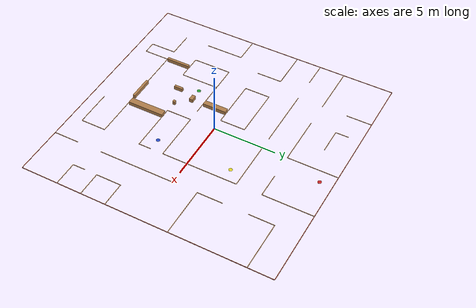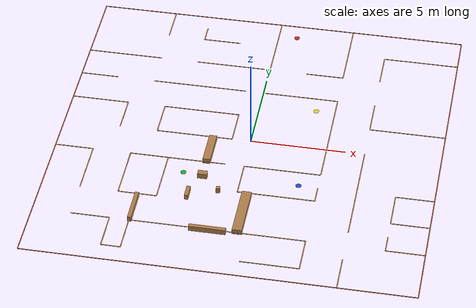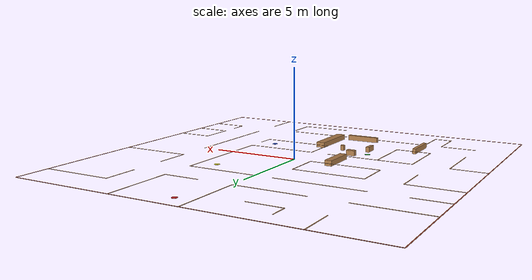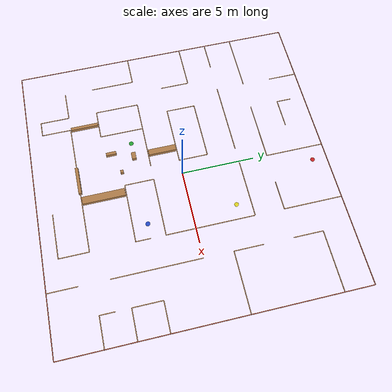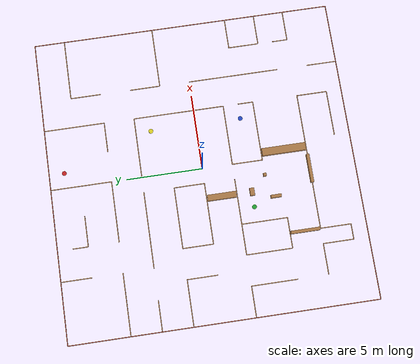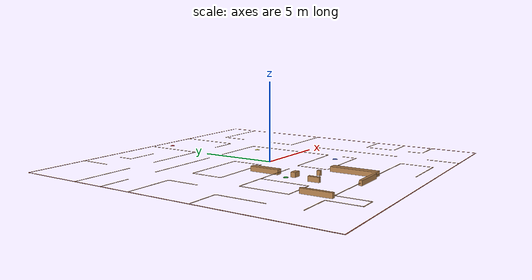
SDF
<sdf version='1.5'>
    <!-- Draw Circle -->
    <model name='ros_symbol'>
      <static>1</static>
      <link name='symbol'>

	<!-- OUTSIDE WALLS-->
        <collision name='OuterWall_0_Collision'>
            <pose>0.0 -10.0 0 0 -0 0</pose>
          <geometry>
            <box>
              <size>20.0 0.05 2.5</size>
            </box>
          </geometry>
          <max_contacts>10</max_contacts>
        <surface>
            <contact>
              <ode/>
            </contact>
            <bounce/>
            <friction>
              <torsional>
                <ode/>
              </torsional>
              <ode/>
            </friction>
          </surface>
        </collision>
        <visual name='OuterWall_0_Visual'>
            <pose frame=''>0.0 -10.0 0 0 -0 0</pose>
          <geometry>
            <box>
              <size>20.0 0.05 0.01</size>
            </box>
          </geometry>
          <material>
            <script>
              <name>Gazebo/Bricks</name>
              <uri>file://media/materials/scripts/gazebo.material</uri>
            </script>
          </material>
        </visual>

        <collision name='OuterWall_1_Collision'>
            <pose>0.0 10.0 0 0 -0 0</pose>
          <geometry>
            <box>
              <size>20.0 0.05 2.5</size>
            </box>
          </geometry>
          <max_contacts>10</max_contacts>
        <surface>
            <contact>
              <ode/>
            </contact>
            <bounce/>
            <friction>
              <torsional>
                <ode/>
              </torsional>
              <ode/>
            </friction>
          </surface>
        </collision>
        <visual name='OuterWall_1_Visual'>
            <pose frame=''>0.0 10.0 0 0 -0 0</pose>
          <geometry>
            <box>
              <size>20.0 0.05 0.01</size>
            </box>
          </geometry>
          <material>
            <script>
              <name>Gazebo/Bricks</name>
              <uri>file://media/materials/scripts/gazebo.material</uri>
            </script>
          </material>
        </visual>

        <collision name='OuterWall_2_Collision'>
            <pose>10.0 0.0 0 0 -0 -1.57079632679</pose>
          <geometry>
            <box>
              <size>20.0 0.05 2.5</size>
            </box>
          </geometry>
          <max_contacts>10</max_contacts>
        <surface>
            <contact>
              <ode/>
            </contact>
            <bounce/>
            <friction>
              <torsional>
                <ode/>
              </torsional>
              <ode/>
            </friction>
          </surface>
        </collision>
        <visual name='OuterWall_2_Visual'>
            <pose frame=''>10.0 0.0 0 0 -0 -1.57079632679</pose>
          <geometry>
            <box>
              <size>20.0 0.05 0.01</size>
            </box>
          </geometry>
          <material>
            <script>
              <name>Gazebo/Bricks</name>
              <uri>file://media/materials/scripts/gazebo.material</uri>
            </script>
          </material>
        </visual>

        <collision name='OuterWall_3_Collision'>
            <pose>-10.0 0.0 0 0 -0 -1.57079632679</pose>
          <geometry>
            <box>
              <size>20.0 0.05 0.01</size>
            </box>
          </geometry>
          <max_contacts>10</max_contacts>
        <surface>
            <contact>
              <ode/>
            </contact>
            <bounce/>
            <friction>
              <torsional>
                <ode/>
              </torsional>
              <ode/>
            </friction>
          </surface>
        </collision>
        <visual name='OuterWall_3_Visual'>
            <pose frame=''>-10.0 0.0 0 0 -0 -1.57079632679</pose>
          <geometry>
            <box>
              <size>20.0 0.05 0.01</size>
            </box>
          </geometry>
          <material>
            <script>
              <name>Gazebo/Bricks</name>
              <uri>file://media/materials/scripts/gazebo.material</uri>
            </script>
          </material>
        </visual>

        <collision name='Wall_1_Collision'>
            <pose>8.0 8.0 0 0 -0 -0</pose>
          <geometry>
            <box>
              <size>4.0 0.05 2.5</size>
            </box>
          </geometry>
          <max_contacts>10</max_contacts>
        <surface>
            <contact>
              <ode/>
            </contact>
            <bounce/>
            <friction>
              <torsional>
                <ode/>
              </torsional>
              <ode/>
            </friction>
          </surface>
        </collision>
        <visual name='Wall_1_Visual'>
            <pose>8.0 8.0 0 0 -0 -0</pose>
          <geometry>
            <box>
              <size>4.0 0.05 0.01</size>
            </box>
          </geometry>
          <material>
            <script>
              <name>Gazebo/Wood</name>
              <uri>file://media/materials/scripts/gazebo.material</uri>
            </script>
          </material>
        </visual>

        <collision name='Wall_2_Collision'>
            <pose>6.0 7.0 0 0 -0 -1.5707</pose>
          <geometry>
            <box>
              <size>2.0 0.05 2.5</size>
            </box>
          </geometry>
          <max_contacts>10</max_contacts>
        <surface>
            <contact>
              <ode/>
            </contact>
            <bounce/>
            <friction>
              <torsional>
                <ode/>
              </torsional>
              <ode/>
            </friction>
          </surface>
        </collision>
        <visual name='Wall_2_Visual'>
            <pose>6.0 7.0 0 0 -0 -1.5707</pose>
          <geometry>
            <box>
              <size>2.0 0.05 0.01</size>
            </box>
          </geometry>
          <material>
            <script>
              <name>Gazebo/Wood</name>
              <uri>file://media/materials/scripts/gazebo.material</uri>
            </script>
          </material>
        </visual>

        <collision name='Wall_3_Collision'>
            <pose>6.0 3.0 0 0 -0 -1.5707</pose>
          <geometry>
            <box>
              <size>2.0 0.05 2.5</size>
            </box>
          </geometry>
          <max_contacts>10</max_contacts>
        <surface>
            <contact>
              <ode/>
            </contact>
            <bounce/>
            <friction>
              <torsional>
                <ode/>
              </torsional>
              <ode/>
            </friction>
          </surface>
        </collision>
        <visual name='Wall_3_Visual'>
            <pose>6.0 3.0 0 0 -0 -1.5707</pose>
          <geometry>
            <box>
              <size>2.0 0.05 0.01</size>
            </box>
          </geometry>
          <material>
            <script>
              <name>Gazebo/Wood</name>
              <uri>file://media/materials/scripts/gazebo.material</uri>
            </script>
          </material>
        </visual>

        <collision name='Wall_4_Collision'>
            <pose>8.0 2.0 0 0 -0 -0</pose>
          <geometry>
            <box>
              <size>4.0 0.05 2.5</size>
            </box>
          </geometry>
          <max_contacts>10</max_contacts>
        <surface>
            <contact>
              <ode/>
            </contact>
            <bounce/>
            <friction>
              <torsional>
                <ode/>
              </torsional>
              <ode/>
            </friction>
          </surface>
        </collision>
        <visual name='Wall_4_Visual'>
            <pose>8.0 2.0 0 0 -0 -0</pose>
          <geometry>
            <box>
              <size>4.0 0.05 0.01</size>
            </box>
          </geometry>
          <material>
            <script>
              <name>Gazebo/Wood</name>
              <uri>file://media/materials/scripts/gazebo.material</uri>
            </script>
          </material>
        </visual>

        <collision name='Wall_5_Collision'>
            <pose>6.0 -3.0 0 0 -0 -1.5707</pose>
          <geometry>
            <box>
              <size>6.0 0.05 2.5</size>
            </box>
          </geometry>
          <max_contacts>10</max_contacts>
        <surface>
            <contact>
              <ode/>
            </contact>
            <bounce/>
            <friction>
              <torsional>
                <ode/>
              </torsional>
              <ode/>
            </friction>
          </surface>
        </collision>
        <visual name='Wall_5_Visual'>
            <pose>6.0 -3.0 0 0 -0 -1.5707</pose>
          <geometry>
            <box>
              <size>6.0 0.05 0.01</size>
            </box>
          </geometry>
          <material>
            <script>
              <name>Gazebo/Wood</name>
              <uri>file://media/materials/scripts/gazebo.material</uri>
            </script>
          </material>
        </visual>

        <collision name='Wall_6_Collision'>
            <pose>9.0 -3.0 0 0 -0 -0</pose>
          <geometry>
            <box>
              <size>2.0 0.05 2.5</size>
            </box>
          </geometry>
          <max_contacts>10</max_contacts>
        <surface>
            <contact>
              <ode/>
            </contact>
            <bounce/>
            <friction>
              <torsional>
                <ode/>
              </torsional>
              <ode/>
            </friction>
          </surface>
        </collision>
        <visual name='Wall_6_Visual'>
            <pose>9.0 -3.0 0 0 -0 -0</pose>
          <geometry>
            <box>
              <size>2.0 0.05 0.01</size>
            </box>
          </geometry>
          <material>
            <script>
              <name>Gazebo/Wood</name>
              <uri>file://media/materials/scripts/gazebo.material</uri>
            </script>
          </material>
        </visual>

        <collision name='Wall_7_Collision'>
            <pose>8.0 -4.0 0 0 -0 -1.5707</pose>
          <geometry>
            <box>
              <size>2.0 0.05 2.5</size>
            </box>
          </geometry>
          <max_contacts>10</max_contacts>
        <surface>
            <contact>
              <ode/>
            </contact>
            <bounce/>
            <friction>
              <torsional>
                <ode/>
              </torsional>
              <ode/>
            </friction>
          </surface>
        </collision>
        <visual name='Wall_7_Visual'>
            <pose>8.0 -4.0 0 0 -0 -1.5707</pose>
          <geometry>
            <box>
              <size>2.0 0.05 0.01</size>
            </box>
          </geometry>
          <material>
            <script>
              <name>Gazebo/Wood</name>
              <uri>file://media/materials/scripts/gazebo.material</uri>
            </script>
          </material>
        </visual>

        <collision name='Wall_8_Collision'>
            <pose>9.0 -5.0 0 0 -0 -0</pose>
          <geometry>
            <box>
              <size>2.0 0.05 2.5</size>
            </box>
          </geometry>
          <max_contacts>10</max_contacts>
        <surface>
            <contact>
              <ode/>
            </contact>
            <bounce/>
            <friction>
              <torsional>
                <ode/>
              </torsional>
              <ode/>
            </friction>
          </surface>
        </collision>
        <visual name='Wall_8_Visual'>
            <pose>9.0 -5.0 0 0 -0 -0</pose>
          <geometry>
            <box>
              <size>2.0 0.05 0.01</size>
            </box>
          </geometry>
          <material>
            <script>
              <name>Gazebo/Wood</name>
              <uri>file://media/materials/scripts/gazebo.material</uri>
            </script>
          </material>
        </visual>

        <collision name='Wall_9_Collision'>
            <pose>8.0 -6.5 0 0 -0 -1.5707</pose>
          <geometry>
            <box>
              <size>1.0 0.05 2.5</size>
            </box>
          </geometry>
          <max_contacts>10</max_contacts>
        <surface>
            <contact>
              <ode/>
            </contact>
            <bounce/>
            <friction>
              <torsional>
                <ode/>
              </torsional>
              <ode/>
            </friction>
          </surface>
        </collision>
        <visual name='Wall_9_Visual'>
            <pose>8.0 -6.5 0 0 -0 -1.5707</pose>
          <geometry>
            <box>
              <size>1.0 0.05 0.01</size>
            </box>
          </geometry>
          <material>
            <script>
              <name>Gazebo/Wood</name>
              <uri>file://media/materials/scripts/gazebo.material</uri>
            </script>
          </material>
        </visual>

        <collision name='Wall_10_Collision'>
            <pose>9.0 -7.0 0 0 -0 -0</pose>
          <geometry>
            <box>
              <size>2.0 0.05 2.5</size>
            </box>
          </geometry>
          <max_contacts>10</max_contacts>
        <surface>
            <contact>
              <ode/>
            </contact>
            <bounce/>
            <friction>
              <torsional>
                <ode/>
              </torsional>
              <ode/>
            </friction>
          </surface>
        </collision>
        <visual name='Wall_10_Visual'>
            <pose>9.0 -7.0 0 0 -0 -0</pose>
          <geometry>
            <box>
              <size>2.0 0.05 0.01</size>
            </box>
          </geometry>
          <material>
            <script>
              <name>Gazebo/Wood</name>
              <uri>file://media/materials/scripts/gazebo.material</uri>
            </script>
          </material>
        </visual>

        <collision name='Wall_11_Collision'>
            <pose>6.0 -9.0 0 0 -0 -1.5707</pose>
          <geometry>
            <box>
              <size>2.0 0.05 2.5</size>
            </box>
          </geometry>
          <max_contacts>10</max_contacts>
        <surface>
            <contact>
              <ode/>
            </contact>
            <bounce/>
            <friction>
              <torsional>
                <ode/>
              </torsional>
              <ode/>
            </friction>
          </surface>
        </collision>
        <visual name='Wall_11_Visual'>
            <pose>6.0 -9.0 0 0 -0 -1.5707</pose>
          <geometry>
            <box>
              <size>2.0 0.05 0.01</size>
            </box>
          </geometry>
          <material>
            <script>
              <name>Gazebo/Wood</name>
              <uri>file://media/materials/scripts/gazebo.material</uri>
            </script>
          </material>
        </visual>

        <collision name='Wall_12_Collision'>
            <pose>4.0 8.0 0 0 -0 -1.5707</pose>
          <geometry>
            <box>
              <size>4.0 0.05 2.5</size>
            </box>
          </geometry>
          <max_contacts>10</max_contacts>
        <surface>
            <contact>
              <ode/>
            </contact>
            <bounce/>
            <friction>
              <torsional>
                <ode/>
              </torsional>
              <ode/>
            </friction>
          </surface>
        </collision>
        <visual name='Wall_12_Visual'>
            <pose>4.0 8.0 0 0 -0 -1.5707</pose>
          <geometry>
            <box>
              <size>4.0 0.05 0.01</size>
            </box>
          </geometry>
          <material>
            <script>
              <name>Gazebo/Wood</name>
              <uri>file://media/materials/scripts/gazebo.material</uri>
            </script>
          </material>
        </visual>

        <collision name='Wall_13_Collision'>
            <pose>3.0 6.0 0 0 -0 -0</pose>
          <geometry>
            <box>
              <size>2.0 0.05 2.5</size>
            </box>
          </geometry>
          <max_contacts>10</max_contacts>
        <surface>
            <contact>
              <ode/>
            </contact>
            <bounce/>
            <friction>
              <torsional>
                <ode/>
              </torsional>
              <ode/>
            </friction>
          </surface>
        </collision>
        <visual name='Wall_13_Visual'>
            <pose>3.0 6.0 0 0 -0 -0</pose>
          <geometry>
            <box>
              <size>2.0 0.05 0.01</size>
            </box>
          </geometry>
          <material>
            <script>
              <name>Gazebo/Wood</name>
              <uri>file://media/materials/scripts/gazebo.material</uri>
            </script>
          </material>
        </visual>

        <collision name='Wall_14_Collision'>
            <pose>0.0 8.0 0 0 -0 -1.5707</pose>
          <geometry>
            <box>
              <size>4.0 0.05 2.5</size>
            </box>
          </geometry>
          <max_contacts>10</max_contacts>
        <surface>
            <contact>
              <ode/>
            </contact>
            <bounce/>
            <friction>
              <torsional>
                <ode/>
              </torsional>
              <ode/>
            </friction>
          </surface>
        </collision>
        <visual name='Wall_14_Visual'>
            <pose>0.0 8.0 0 0 -0 -1.5707</pose>
          <geometry>
            <box>
              <size>4.0 0.05 0.01</size>
            </box>
          </geometry>
          <material>
            <script>
              <name>Gazebo/Wood</name>
              <uri>file://media/materials/scripts/gazebo.material</uri>
            </script>
          </material>
        </visual>

        <collision name='Wall_15_Collision'>
            <pose>-2.0 6.0 0 0 -0 -0</pose>
          <geometry>
            <box>
              <size>4.0 0.05 2.5</size>
            </box>
          </geometry>
          <max_contacts>10</max_contacts>
        <surface>
            <contact>
              <ode/>
            </contact>
            <bounce/>
            <friction>
              <torsional>
                <ode/>
              </torsional>
              <ode/>
            </friction>
          </surface>
        </collision>
        <visual name='Wall_15_Visual'>
            <pose>-2.0 6.0 0 0 -0 -0</pose>
          <geometry>
            <box>
              <size>4.0 0.05 0.01</size>
            </box>
          </geometry>
          <material>
            <script>
              <name>Gazebo/Wood</name>
              <uri>file://media/materials/scripts/gazebo.material</uri>
            </script>
          </material>
        </visual>

        <collision name='Wall_16_Collision'>
            <pose>-3.0 8.0 0 0 -0 -0</pose>
          <geometry>
            <box>
              <size>2.0 0.05 2.5</size>
            </box>
          </geometry>
          <max_contacts>10</max_contacts>
        <surface>
            <contact>
              <ode/>
            </contact>
            <bounce/>
            <friction>
              <torsional>
                <ode/>
              </torsional>
              <ode/>
            </friction>
          </surface>
        </collision>
        <visual name='Wall_16_Visual'>
            <pose>-3.0 8.0 0 0 -0 -0</pose>
          <geometry>
            <box>
              <size>2.0 0.05 0.01</size>
            </box>
          </geometry>
          <material>
            <script>
              <name>Gazebo/Wood</name>
              <uri>file://media/materials/scripts/gazebo.material</uri>
            </script>
          </material>
        </visual>

        <collision name='Wall_17_Collision'>
            <pose>-4.0 8.5 0 0 -0 -1.5707</pose>
          <geometry>
            <box>
              <size>1.0 0.05 2.5</size>
            </box>
          </geometry>
          <max_contacts>10</max_contacts>
        <surface>
            <contact>
              <ode/>
            </contact>
            <bounce/>
            <friction>
              <torsional>
                <ode/>
              </torsional>
              <ode/>
            </friction>
          </surface>
        </collision>
        <visual name='Wall_17_Visual'>
            <pose>-4.0 8.5 0 0 -0 -1.5707</pose>
          <geometry>
            <box>
              <size>1.0 0.05 0.01</size>
            </box>
          </geometry>
          <material>
            <script>
              <name>Gazebo/Wood</name>
              <uri>file://media/materials/scripts/gazebo.material</uri>
            </script>
          </material>
        </visual>

        <collision name='Wall_18_Collision'>
            <pose>-6.0 9.0 0 0 -0 -1.5707</pose>
          <geometry>
            <box>
              <size>2.0 0.05 2.5</size>
            </box>
          </geometry>
          <max_contacts>10</max_contacts>
        <surface>
            <contact>
              <ode/>
            </contact>
            <bounce/>
            <friction>
              <torsional>
                <ode/>
              </torsional>
              <ode/>
            </friction>
          </surface>
        </collision>
        <visual name='Wall_18_Visual'>
            <pose>-6.0 9.0 0 0 -0 -1.5707</pose>
          <geometry>
            <box>
              <size>2.0 0.05 0.01</size>
            </box>
          </geometry>
          <material>
            <script>
              <name>Gazebo/Wood</name>
              <uri>file://media/materials/scripts/gazebo.material</uri>
            </script>
          </material>
        </visual>

        <collision name='Wall_19_Collision'>
            <pose>-8.0 6.0 0 0 -0 -0</pose>
          <geometry>
            <box>
              <size>4.0 0.05 2.5</size>
            </box>
          </geometry>
          <max_contacts>10</max_contacts>
        <surface>
            <contact>
              <ode/>
            </contact>
            <bounce/>
            <friction>
              <torsional>
                <ode/>
              </torsional>
              <ode/>
            </friction>
          </surface>
        </collision>
        <visual name='Wall_19_Visual'>
            <pose>-8.0 6.0 0 0 -0 -0</pose>
          <geometry>
            <box>
              <size>4.0 0.05 0.01</size>
            </box>
          </geometry>
          <material>
            <script>
              <name>Gazebo/Wood</name>
              <uri>file://media/materials/scripts/gazebo.material</uri>
            </script>
          </material>
        </visual>

        <collision name='Wall_20_Collision'>
            <pose>-9.0 4.0 0 0 -0 -0</pose>
          <geometry>
            <box>
              <size>2.0 0.05 2.5</size>
            </box>
          </geometry>
          <max_contacts>10</max_contacts>
        <surface>
            <contact>
              <ode/>
            </contact>
            <bounce/>
            <friction>
              <torsional>
                <ode/>
              </torsional>
              <ode/>
            </friction>
          </surface>
        </collision>
        <visual name='Wall_20_Visual'>
            <pose>-9.0 4.0 0 0 -0 -0</pose>
          <geometry>
            <box>
              <size>2.0 0.05 0.01</size>
            </box>
          </geometry>
          <material>
            <script>
              <name>Gazebo/Wood</name>
              <uri>file://media/materials/scripts/gazebo.material</uri>
            </script>
          </material>
        </visual>

        <collision name='Wall_21_Collision'>
            <pose>-3.5 4.0 0 0 -0 -0</pose>
          <geometry>
            <box>
              <size>5.0 0.05 2.5</size>
            </box>
          </geometry>
          <max_contacts>10</max_contacts>
        <surface>
            <contact>
              <ode/>
            </contact>
            <bounce/>
            <friction>
              <torsional>
                <ode/>
              </torsional>
              <ode/>
            </friction>
          </surface>
        </collision>
        <visual name='Wall_21_Visual'>
            <pose>-3.5 4.0 0 0 -0 -0</pose>
          <geometry>
            <box>
              <size>5.0 0.05 0.01</size>
            </box>
          </geometry>
          <material>
            <script>
              <name>Gazebo/Wood</name>
              <uri>file://media/materials/scripts/gazebo.material</uri>
            </script>
          </material>
        </visual>

        <collision name='Wall_22_Collision'>
            <pose>2 4.0 0 0 -0 -0</pose>
          <geometry>
            <box>
              <size>4.0 0.05 2.5</size>
            </box>
          </geometry>
          <max_contacts>10</max_contacts>
        <surface>
            <contact>
              <ode/>
            </contact>
            <bounce/>
            <friction>
              <torsional>
                <ode/>
              </torsional>
              <ode/>
            </friction>
          </surface>
        </collision>
        <visual name='Wall_22_Visual'>
            <pose>2 4.0 0 0 -0 -0</pose>
          <geometry>
            <box>
              <size>4.0 0.05 0.01</size>
            </box>
          </geometry>
          <material>
            <script>
              <name>Gazebo/Wood</name>
              <uri>file://media/materials/scripts/gazebo.material</uri>
            </script>
          </material>
        </visual>

        <collision name='Wall_23_Collision'>
            <pose>4.0 1 0 0 -0 -1.5707</pose>
          <geometry>
            <box>
              <size>6.0 0.05 2.5</size>
            </box>
          </geometry>
          <max_contacts>10</max_contacts>
        <surface>
            <contact>
              <ode/>
            </contact>
            <bounce/>
            <friction>
              <torsional>
                <ode/>
              </torsional>
              <ode/>
            </friction>
          </surface>
        </collision>
        <visual name='Wall_23_Visual'>
            <pose>4.0 1 0 0 -0 -1.5707</pose>
          <geometry>
            <box>
              <size>6.0 0.05 0.01</size>
            </box>
          </geometry>
          <material>
            <script>
              <name>Gazebo/Wood</name>
              <uri>file://media/materials/scripts/gazebo.material</uri>
            </script>
          </material>
        </visual>

        <collision name='Wall_24_Collision'>
            <pose>-1.0 1.0 0 0 -0 -1.5707</pose>
          <geometry>
            <box>
              <size>2.0 0.05 2.5</size>
            </box>
          </geometry>
          <max_contacts>10</max_contacts>
        <surface>
            <contact>
              <ode/>
            </contact>
            <bounce/>
            <friction>
              <torsional>
                <ode/>
              </torsional>
              <ode/>
            </friction>
          </surface>
        </collision>
        <visual name='Wall_24_Visual'>
            <pose>-1.0 1.0 0 0 -0 -1.5707</pose>
          <geometry>
            <box>
              <size>2.0 0.05 0.01</size>
            </box>
          </geometry>
          <material>
            <script>
              <name>Gazebo/Wood</name>
              <uri>file://media/materials/scripts/gazebo.material</uri>
            </script>
          </material>
        </visual>

        <collision name='Wall_25_Collision'>
            <pose>-3.0 2.0 0 0 -0 -0</pose>
          <geometry>
            <box>
              <size>4.0 0.05 2.5</size>
            </box>
          </geometry>
          <max_contacts>10</max_contacts>
        <surface>
            <contact>
              <ode/>
            </contact>
            <bounce/>
            <friction>
              <torsional>
                <ode/>
              </torsional>
              <ode/>
            </friction>
          </surface>
        </collision>
        <visual name='Wall_25_Visual'>
            <pose>-3.0 2.0 0 0 -0 -0</pose>
          <geometry>
            <box>
              <size>4.0 0.05 0.01</size>
            </box>
          </geometry>
          <material>
            <script>
              <name>Gazebo/Wood</name>
              <uri>file://media/materials/scripts/gazebo.material</uri>
            </script>
          </material>
        </visual>

        <collision name='Wall_26_Collision'>
            <pose>-3.0 0.0 0 0 -0 -0</pose>
          <geometry>
            <box>
              <size>4.0 0.05 2.5</size>
            </box>
          </geometry>
          <max_contacts>10</max_contacts>
        <surface>
            <contact>
              <ode/>
            </contact>
            <bounce/>
            <friction>
              <torsional>
                <ode/>
              </torsional>
              <ode/>
            </friction>
          </surface>
        </collision>
        <visual name='Wall_26_Visual'>
            <pose>-3.0 0.0 0 0 -0 -0</pose>
          <geometry>
            <box>
              <size>4.0 0.05 0.01</size>
            </box>
          </geometry>
          <material>
            <script>
              <name>Gazebo/Wood</name>
              <uri>file://media/materials/scripts/gazebo.material</uri>
            </script>
          </material>
        </visual>

        <collision name='Wall_27_Collision'>
            <pose>-5.0 1.0 0 0 -0 -1.5707</pose>
          <geometry>
            <box>
              <size>2.0 0.05 2.5</size>
            </box>
          </geometry>
          <max_contacts>10</max_contacts>
        <surface>
            <contact>
              <ode/>
            </contact>
            <bounce/>
            <friction>
              <torsional>
                <ode/>
              </torsional>
              <ode/>
            </friction>
          </surface>
        </collision>
        <visual name='Wall_27_Visual'>
            <pose>-5.0 1.0 0 0 -0 -1.5707</pose>
          <geometry>
            <box>
              <size>2.0 0.05 0.01</size>
            </box>
          </geometry>
          <material>
            <script>
              <name>Gazebo/Wood</name>
              <uri>file://media/materials/scripts/gazebo.material</uri>
            </script>
          </material>
        </visual>

        <collision name='Wall_28_Collision'>
            <pose>-7.0 1.0 0 0 -0 -1.5707</pose>
          <geometry>
            <box>
              <size>2.0 0.05 2.5</size>
            </box>
          </geometry>
          <max_contacts>10</max_contacts>
        <surface>
            <contact>
              <ode/>
            </contact>
            <bounce/>
            <friction>
              <torsional>
                <ode/>
              </torsional>
              <ode/>
            </friction>
          </surface>
        </collision>
        <visual name='Wall_28_Visual'>
            <pose>-7.0 1.0 0 0 -0 -1.5707</pose>
          <geometry>
            <box>
              <size>2.0 0.05 0.01</size>
            </box>
          </geometry>
          <material>
            <script>
              <name>Gazebo/Wood</name>
              <uri>file://media/materials/scripts/gazebo.material</uri>
            </script>
          </material>
        </visual>

        <collision name='Wall_29_Collision'>
            <pose>-8.5 2.0 0 0 -0 -0</pose>
          <geometry>
            <box>
              <size>3.0 0.05 2.5</size>
            </box>
          </geometry>
          <max_contacts>10</max_contacts>
        <surface>
            <contact>
              <ode/>
            </contact>
            <bounce/>
            <friction>
              <torsional>
                <ode/>
              </torsional>
              <ode/>
            </friction>
          </surface>
        </collision>
        <visual name='Wall_29_Visual'>
            <pose>-8.5 2.0 0 0 -0 -0</pose>
          <geometry>
            <box>
              <size>3.0 0.05 0.01</size>
            </box>
          </geometry>
          <material>
            <script>
              <name>Gazebo/Wood</name>
              <uri>file://media/materials/scripts/gazebo.material</uri>
            </script>
          </material>
        </visual>

        <collision name='Wall_30_Collision'>
            <pose>-7.5 2.0 0 0 -0 -0</pose>
          <geometry>
            <box>
              <size>1.0 0.05 2.5</size>
            </box>
          </geometry>
          <max_contacts>10</max_contacts>
        <surface>
            <contact>
              <ode/>
            </contact>
            <bounce/>
            <friction>
              <torsional>
                <ode/>
              </torsional>
              <ode/>
            </friction>
          </surface>
        </collision>
        <visual name='Wall_30_Visual'>
            <pose>-7.5 2.0 0 0 -0 -0</pose>
          <geometry>
            <box>
              <size>1.0 0.05 0.01</size>
            </box>
          </geometry>
          <material>
            <script>
              <name>Gazebo/Wood</name>
              <uri>file://media/materials/scripts/gazebo.material</uri>
            </script>
          </material>
        </visual>

        <collision name='Wall_31_Collision'>
            <pose>-9.0 -2.0 0 0 -0 -0</pose>
          <geometry>
            <box>
              <size>2.0 0.05 2.5</size>
            </box>
          </geometry>
          <max_contacts>10</max_contacts>
        <surface>
            <contact>
              <ode/>
            </contact>
            <bounce/>
            <friction>
              <torsional>
                <ode/>
              </torsional>
              <ode/>
            </friction>
          </surface>
        </collision>
        <visual name='Wall_31_Visual'>
            <pose>-9.0 -2.0 0 0 -0 -0</pose>
          <geometry>
            <box>
              <size>2.0 0.05 0.01</size>
            </box>
          </geometry>
          <material>
            <script>
              <name>Gazebo/Wood</name>
              <uri>file://media/materials/scripts/gazebo.material</uri>
            </script>
          </material>
        </visual>

        <collision name='Wall_32_Collision'>
            <pose>-8.0 -3.5 0 0 -0 -1.5707</pose>
          <geometry>
            <box>
              <size>3.0 0.05 2.5</size>
            </box>
          </geometry>
          <max_contacts>10</max_contacts>
        <surface>
            <contact>
              <ode/>
            </contact>
            <bounce/>
            <friction>
              <torsional>
                <ode/>
              </torsional>
              <ode/>
            </friction>
          </surface>
        </collision>
        <visual name='Wall_32_Visual'>
            <pose>-8.0 -3.5 0 0 -0 -1.5707</pose>
          <geometry>
            <box>
              <size>3.0 0.05 0.01</size>
            </box>
          </geometry>
          <material>
            <script>
              <name>Gazebo/Wood</name>
              <uri>file://media/materials/scripts/gazebo.material</uri>
            </script>
          </material>
        </visual>

        <collision name='Wall_33_Collision'>
            <pose>-6.0 -3.5 0 0 -0 -1.5707</pose>
          <geometry>
            <box>
              <size>3.0 0.05 2.5</size>
            </box>
          </geometry>
          <max_contacts>10</max_contacts>
        <surface>
            <contact>
              <ode/>
            </contact>
            <bounce/>
            <friction>
              <torsional>
                <ode/>
              </torsional>
              <ode/>
            </friction>
          </surface>
        </collision>
        <visual name='Wall_33_Visual'>
            <pose>-6.0 -3.5 0 0 -0 -1.5707</pose>
          <geometry>
            <box>
              <size>3.0 0.05 0.01</size>
            </box>
          </geometry>
          <material>
            <script>
              <name>Gazebo/Wood</name>
              <uri>file://media/materials/scripts/gazebo.material</uri>
            </script>
          </material>
        </visual>

        <collision name='Wall_34_Collision'>
            <pose>-5.0 -5.0 0 0 -0 -0</pose>
          <geometry>
            <box>
              <size>2.0 0.05 2.5</size>
            </box>
          </geometry>
          <max_contacts>10</max_contacts>
        <surface>
            <contact>
              <ode/>
            </contact>
            <bounce/>
            <friction>
              <torsional>
                <ode/>
              </torsional>
              <ode/>
            </friction>
          </surface>
        </collision>
        <visual name='Wall_34_Visual'>
            <pose>-5.0 -5.0 0 0 -0 -0</pose>
          <geometry>
            <box>
              <size>2.0 0.05 0.01</size>
            </box>
          </geometry>
          <material>
            <script>
              <name>Gazebo/Wood</name>
              <uri>file://media/materials/scripts/gazebo.material</uri>
            </script>
          </material>
        </visual>

         <collision name='Wall_35_Collision'>
            <pose>-4.0 -3.5 0 0 -0 -1.5707</pose>
          <geometry>
            <box>
              <size>3.0 0.05 2.5</size>
            </box>
          </geometry>
          <max_contacts>10</max_contacts>
        <surface>
            <contact>
              <ode/>
            </contact>
            <bounce/>
            <friction>
              <torsional>
                <ode/>
              </torsional>
              <ode/>
            </friction>
          </surface>
        </collision>
        <visual name='Wall_35_Visual'>
            <pose>-4.0 -3.5 0 0 -0 -1.5707</pose>
          <geometry>
            <box>
              <size>3.0 0.05 0.01</size>
            </box>
          </geometry>
          <material>
            <script>
              <name>Gazebo/Wood</name>
              <uri>file://media/materials/scripts/gazebo.material</uri>
            </script>
          </material>
        </visual>

        <collision name='Wall_36_Collision'>
            <pose>-3.5 -2.0 0 0 -0 -0</pose>
          <geometry>
            <box>
              <size>5.0 0.05 2.5</size>
            </box>
          </geometry>
          <max_contacts>10</max_contacts>
        <surface>
            <contact>
              <ode/>
            </contact>
            <bounce/>
            <friction>
              <torsional>
                <ode/>
              </torsional>
              <ode/>
            </friction>
          </surface>
        </collision>
        <visual name='Wall_36_Visual'>
            <pose>-3.5 -2.0 0 0 -0 -0</pose>
          <geometry>
            <box>
              <size>5.0 0.05 0.01</size>
            </box>
          </geometry>
          <material>
            <script>
              <name>Gazebo/Wood</name>
              <uri>file://media/materials/scripts/gazebo.material</uri>
            </script>
          </material>
        </visual>

        <collision name='Wall_37_Collision'>
            <pose>2.0 -2.0 0 0 -0 -0</pose>
          <geometry>
            <box>
              <size>4.0 0.05 2.5</size>
            </box>
          </geometry>
          <max_contacts>10</max_contacts>
        <surface>
            <contact>
              <ode/>
            </contact>
            <bounce/>
            <friction>
              <torsional>
                <ode/>
              </torsional>
              <ode/>
            </friction>
          </surface>
        </collision>
        <visual name='Wall_37_Visual'>
            <pose>2.0 -2.0 0 0 -0 -0</pose>
          <geometry>
            <box>
              <size>4.0 0.05 0.01</size>
            </box>
          </geometry>
          <material>
            <script>
              <name>Gazebo/Wood</name>
              <uri>file://media/materials/scripts/gazebo.material</uri>
            </script>
          </material>
        </visual>

         <collision name='Wall_38_Collision'>
            <pose>-0.0 -3.0 0 0 -0 -1.5707</pose>
          <geometry>
            <box>
              <size>2.0 0.05 2.5</size>
            </box>
          </geometry>
          <max_contacts>10</max_contacts>
        <surface>
            <contact>
              <ode/>
            </contact>
            <bounce/>
            <friction>
              <torsional>
                <ode/>
              </torsional>
              <ode/>
            </friction>
          </surface>
        </collision>
        <visual name='Wall_38_Visual'>
            <pose>-0.0 -3.0 0 0 -0 -1.5707</pose>
          <geometry>
            <box>
              <size>2.0 0.05 0.01</size>
            </box>
          </geometry>
          <material>
            <script>
              <name>Gazebo/Wood</name>
              <uri>file://media/materials/scripts/gazebo.material</uri>
            </script>
          </material>
        </visual>

        <collision name='Wall_39_Collision'>
            <pose>2.0 -4.0 0 0 -0 -0</pose>
          <geometry>
            <box>
              <size>4.0 0.05 2.5</size>
            </box>
          </geometry>
          <max_contacts>10</max_contacts>
        <surface>
            <contact>
              <ode/>
            </contact>
            <bounce/>
            <friction>
              <torsional>
                <ode/>
              </torsional>
              <ode/>
            </friction>
          </surface>
        </collision>
        <visual name='Wall_39_Visual'>
            <pose>2.0 -4.0 0 0 -0 -0</pose>
          <geometry>
            <box>
              <size>4.0 0.05 0.01</size>
            </box>
          </geometry>
          <material>
            <script>
              <name>Gazebo/Wood</name>
              <uri>file://media/materials/scripts/gazebo.material</uri>
            </script>
          </material>
        </visual>

         <collision name='Wall_40_Collision'>
            <pose>4.0 -3.5 0 0 -0 -1.5707</pose>
          <geometry>
            <box>
              <size>1.0 0.05 2.5</size>
            </box>
          </geometry>
          <max_contacts>10</max_contacts>
        <surface>
            <contact>
              <ode/>
            </contact>
            <bounce/>
            <friction>
              <torsional>
                <ode/>
              </torsional>
              <ode/>
            </friction>
          </surface>
        </collision>
        <visual name='Wall_40_Visual'>
            <pose>4.0 -3.5 0 0 -0 -1.5707</pose>
          <geometry>
            <box>
              <size>1.0 0.05 0.01</size>
            </box>
          </geometry>
          <material>
            <script>
              <name>Gazebo/Wood</name>
              <uri>file://media/materials/scripts/gazebo.material</uri>
            </script>
          </material>
        </visual>

         <collision name='Wall_41_Collision'>
            <pose>4.0 -8.0 0 0 -0 -1.5707</pose>
          <geometry>
            <box>
              <size>2.0 0.05 2.5</size>
            </box>
          </geometry>
          <max_contacts>10</max_contacts>
        <surface>
            <contact>
              <ode/>
            </contact>
            <bounce/>
            <friction>
              <torsional>
                <ode/>
              </torsional>
              <ode/>
            </friction>
          </surface>
        </collision>
        <visual name='Wall_41_Visual'>
            <pose>4.0 -8.0 0 0 -0 -1.5707</pose>
          <geometry>
            <box>
              <size>2.0 0.05 0.01</size>
            </box>
          </geometry>
          <material>
            <script>
              <name>Gazebo/Wood</name>
              <uri>file://media/materials/scripts/gazebo.material</uri>
            </script>
          </material>
        </visual>

        <collision name='Wall_42_Collision'>
            <pose>2.5 -9.0 0 0 -0 -0</pose>
          <geometry>
            <box>
              <size>3.0 0.05 2.5</size>
            </box>
          </geometry>
          <max_contacts>10</max_contacts>
        <surface>
            <contact>
              <ode/>
            </contact>
            <bounce/>
            <friction>
              <torsional>
                <ode/>
              </torsional>
              <ode/>
            </friction>
          </surface>
        </collision>
        <visual name='Wall_42_Visual'>
            <pose>2.5 -9.0 0 0 -0 -0</pose>
          <geometry>
            <box>
              <size>3.0 0.05 0.01</size>
            </box>
          </geometry>
          <material>
            <script>
              <name>Gazebo/Wood</name>
              <uri>file://media/materials/scripts/gazebo.material</uri>
            </script>
          </material>
        </visual>

        <collision name='Wall_43_Collision'>
            <pose>2.0 -7.0 0 0 -0 -0</pose>
          <geometry>
            <box>
              <size>4.0 0.05 2.5</size>
            </box>
          </geometry>
          <max_contacts>10</max_contacts>
        <surface>
            <contact>
              <ode/>
            </contact>
            <bounce/>
            <friction>
              <torsional>
                <ode/>
              </torsional>
              <ode/>
            </friction>
          </surface>
        </collision>
        <visual name='Wall_43_Visual'>
            <pose>2.0 -7.0 0 0 -0 -0</pose>
          <geometry>
            <box>
              <size>4.0 0.05 0.01</size>
            </box>
          </geometry>
          <material>
            <script>
              <name>Gazebo/Wood</name>
              <uri>file://media/materials/scripts/gazebo.material</uri>
            </script>
          </material>
        </visual>

        <collision name='Wall_44_Collision'>
            <pose>-3.5 -7.0 0 0 -0 -0</pose>
          <geometry>
            <box>
              <size>3.0 0.05 2.5</size>
            </box>
          </geometry>
          <max_contacts>10</max_contacts>
        <surface>
            <contact>
              <ode/>
            </contact>
            <bounce/>
            <friction>
              <torsional>
                <ode/>
              </torsional>
              <ode/>
            </friction>
          </surface>
        </collision>
        <visual name='Wall_44_Visual'>
            <pose>-3.5 -7.0 0 0 -0 -0</pose>
          <geometry>
            <box>
              <size>3.0 0.05 0.01</size>
            </box>
          </geometry>
          <material>
            <script>
              <name>Gazebo/Wood</name>
              <uri>file://media/materials/scripts/gazebo.material</uri>
            </script>
          </material>
        </visual>

         <collision name='Wall_45_Collision'>
            <pose>-5.0 -8.0 0 0 -0 -1.5707</pose>
          <geometry>
            <box>
              <size>2.0 0.05 2.5</size>
            </box>
          </geometry>
          <max_contacts>10</max_contacts>
        <surface>
            <contact>
              <ode/>
            </contact>
            <bounce/>
            <friction>
              <torsional>
                <ode/>
              </torsional>
              <ode/>
            </friction>
          </surface>
        </collision>
        <visual name='Wall_45_Visual'>
            <pose>-5.0 -8.0 0 0 -0 -1.5707</pose>
          <geometry>
            <box>
              <size>2.0 0.05 0.01</size>
            </box>
          </geometry>
          <material>
            <script>
              <name>Gazebo/Wood</name>
              <uri>file://media/materials/scripts/gazebo.material</uri>
            </script>
          </material>
        </visual>

        <collision name='Wall_46_Collision'>
            <pose>-5.5 -9.0 0 0 -0 -0</pose>
          <geometry>
            <box>
              <size>1.0 0.05 2.5</size>
            </box>
          </geometry>
          <max_contacts>10</max_contacts>
        <surface>
            <contact>
              <ode/>
            </contact>
            <bounce/>
            <friction>
              <torsional>
                <ode/>
              </torsional>
              <ode/>
            </friction>
          </surface>
        </collision>
        <visual name='Wall_46_Visual'>
            <pose>-5.5 -9.0 0 0 -0 -0</pose>
          <geometry>
            <box>
              <size>1.0 0.05 0.01</size>
            </box>
          </geometry>
          <material>
            <script>
              <name>Gazebo/Wood</name>
              <uri>file://media/materials/scripts/gazebo.material</uri>
            </script>
          </material>
        </visual>

         <collision name='Wall_47_Collision'>
            <pose>-6.0 -8.0 0 0 -0 -1.5707</pose>
          <geometry>
            <box>
              <size>2.0 0.05 2.5</size>
            </box>
          </geometry>
          <max_contacts>10</max_contacts>
        <surface>
            <contact>
              <ode/>
            </contact>
            <bounce/>
            <friction>
              <torsional>
                <ode/>
              </torsional>
              <ode/>
            </friction>
          </surface>
        </collision>
        <visual name='Wall_47_Visual'>
            <pose>-6.0 -8.0 0 0 -0 -1.5707</pose>
          <geometry>
            <box>
              <size>2.0 0.05 0.01</size>
            </box>
          </geometry>
          <material>
            <script>
              <name>Gazebo/Wood</name>
              <uri>file://media/materials/scripts/gazebo.material</uri>
            </script>
          </material>
        </visual>

        <collision name='Wall_48_Collision'>
            <pose>-7.0 -7.0 0 0 -0 -0</pose>
          <geometry>
            <box>
              <size>2.0 0.05 2.5</size>
            </box>
          </geometry>
          <max_contacts>10</max_contacts>
        <surface>
            <contact>
              <ode/>
            </contact>
            <bounce/>
            <friction>
              <torsional>
                <ode/>
              </torsional>
              <ode/>
            </friction>
          </surface>
        </collision>
        <visual name='Wall_48_Visual'>
            <pose>-7.0 -7.0 0 0 -0 -0</pose>
          <geometry>
            <box>
              <size>2.0 0.05 0.01</size>
            </box>
          </geometry>
          <material>
            <script>
              <name>Gazebo/Wood</name>
              <uri>file://media/materials/scripts/gazebo.material</uri>
            </script>
          </material>
        </visual>

<!-- Test course -->
         <collision name='Box1'>
            <pose>-2 -1 0 0 -0 -1.5707</pose>
          <geometry>
            <box>
              <size>1.9 0.4 1.0</size>
            </box>
          </geometry>
          <max_contacts>10</max_contacts>
        <surface>
            <contact>
              <ode/>
            </contact>
            <bounce/>
            <friction>
              <torsional>
                <ode/>
              </torsional>
              <ode/>
            </friction>
          </surface>
        </collision>
        <visual name='Box1_Visual'>
            <pose>-2 -1 0 0 -0 -1.5707</pose>
          <geometry>
            <box>
              <size>1.9 0.4 0.3</size>
            </box>
          </geometry>
          <material>
            <script>
              <name>Gazebo/Wood</name>
              <uri>file://media/materials/scripts/gazebo.material</uri>
            </script>
          </material>
        </visual>

         <collision name='Box2_Collision'>
            <pose>-2 -3 0 0 -0 -1.5707</pose>
          <geometry>
            <box>
              <size>0.3 0.5 1.0</size>
            </box>
          </geometry>
          <max_contacts>10</max_contacts>
        <surface>
            <contact>
              <ode/>
            </contact>
            <bounce/>
            <friction>
              <torsional>
                <ode/>
              </torsional>
              <ode/>
            </friction>
          </surface>
        </collision>
        <visual name='Box2_Visual'>
            <pose>-2 -3 0 0 -0 -1.5707</pose>
          <geometry>
            <box>
              <size>0.3 0.5 0.3</size>
            </box>
          </geometry>
          <material>
            <script>
              <name>Gazebo/Wood</name>
              <uri>file://media/materials/scripts/gazebo.material</uri>
            </script>
          </material>
        </visual>

         <collision name='Box3_Collision'>
            <pose>-1 -4 0 0 -0 -1.5707</pose>
          <geometry>
            <box>
              <size>0.2 0.2 1.0</size>
            </box>
          </geometry>
          <max_contacts>10</max_contacts>
        <surface>
            <contact>
              <ode/>
            </contact>
            <bounce/>
            <friction>
              <torsional>
                <ode/>
              </torsional>
              <ode/>
            </friction>
          </surface>
        </collision>
        <visual name='Box3_Visual'>
            <pose>-1 -4 0 0 -0 -1.5707</pose>
          <geometry>
            <box>
              <size>0.2 0.2 0.3</size>
            </box>
          </geometry>
          <material>
            <script>
              <name>Gazebo/Wood</name>
              <uri>file://media/materials/scripts/gazebo.material</uri>
            </script>
          </material>
        </visual>

         <collision name='Box4_Collision'>
            <pose>0.5 -5.5 0 0 -0 -1.5707</pose>
          <geometry>
            <box>
              <size>2.9 0.5 1.0</size>
            </box>
          </geometry>
          <max_contacts>10</max_contacts>
        <surface>
            <contact>
              <ode/>
            </contact>
            <bounce/>
            <friction>
              <torsional>
                <ode/>
              </torsional>
              <ode/>
            </friction>
          </surface>
        </collision>
        <visual name='Box4_Visual'>
            <pose>0.5 -5.5 0 0 -0 -1.5707</pose>
          <geometry>
            <box>
              <size>2.9 0.5 0.3</size>
            </box>
          </geometry>
          <material>
            <script>
              <name>Gazebo/Wood</name>
              <uri>file://media/materials/scripts/gazebo.material</uri>
            </script>
          </material>
        </visual>

         <collision name='Box5_Collision'>
            <pose>-2.5 -4.5 0 0 -0 -1.5707</pose>
          <geometry>
            <box>
              <size>0.7 0.2 1.0</size>
            </box>
          </geometry>
          <max_contacts>10</max_contacts>
        <surface>
            <contact>
              <ode/>
            </contact>
            <bounce/>
            <friction>
              <torsional>
                <ode/>
              </torsional>
              <ode/>
            </friction>
          </surface>
        </collision>
        <visual name='Box5_Visual'>
            <pose>-2.5 -4.5 0 0 -0 -1.5707</pose>
          <geometry>
            <box>
              <size>0.7 0.2 0.3</size>
            </box>
          </geometry>
          <material>
            <script>
              <name>Gazebo/Wood</name>
              <uri>file://media/materials/scripts/gazebo.material</uri>
            </script>
          </material>
        </visual>

        <collision name='Box6_Collision'>
            <pose>-1 -7 0 0 -0 -0</pose>
          <geometry>
            <box>
              <size>1.9 0.2 1.0</size>
            </box>
          </geometry>
          <max_contacts>10</max_contacts>
        <surface>
            <contact>
              <ode/>
            </contact>
            <bounce/>
            <friction>
              <torsional>
                <ode/>
              </torsional>
              <ode/>
            </friction>
          </surface>
        </collision>
        <visual name='Box6_Visual'>
            <pose>-1 -7 0 0 -0 -0</pose>
          <geometry>
            <box>
              <size>1.9 0.2 0.3</size>
            </box>
          </geometry>
          <material>
            <script>
              <name>Gazebo/Wood</name>
              <uri>file://media/materials/scripts/gazebo.material</uri>
            </script>
          </material>
        </visual>

        <collision name='Box7_Collision'>
            <pose>-5 -6 0 0 -0 -1.5707</pose>
          <geometry>
            <box>
              <size>1.9 0.2 1.0</size>
            </box>
          </geometry>
          <max_contacts>10</max_contacts>
        <surface>
            <contact>
              <ode/>
            </contact>
            <bounce/>
            <friction>
              <torsional>
                <ode/>
              </torsional>
              <ode/>
            </friction>
          </surface>
        </collision>
        <visual name='Box7_Visual'>
            <pose>-5 -6 0 0 -0 -1.5707</pose>
          <geometry>
            <box>
              <size>1.9 0.2 0.3</size>
            </box>
          </geometry>
          <material>
            <script>
              <name>Gazebo/Wood</name>
              <uri>file://media/materials/scripts/gazebo.material</uri>
            </script>
          </material>
        </visual>

         <collision name='Box8_Collision'>
            <pose>-1.5 -5.5 0 0 -0 -1.5707</pose>
          <geometry>
            <box>
              <size>0.2 0.2 1.0</size>
            </box>
          </geometry>
          <max_contacts>10</max_contacts>
        <surface>
            <contact>
              <ode/>
            </contact>
            <bounce/>
            <friction>
              <torsional>
                <ode/>
              </torsional>
              <ode/>
            </friction>
          </surface>
        </collision>

    <!-- Invisible Obstacle Course -->
        <collision name='Box9_Collision'>
            <pose>-1.3 3 0 0 -0 -1.5707</pose>
          <geometry>
            <box>
              <size>1.9 0.1 1.0</size>
            </box>
          </geometry>
          <max_contacts>10</max_contacts>
        <surface>
            <contact>
              <ode/>
            </contact>
            <bounce/>
            <friction>
              <torsional>
                <ode/>
              </torsional>
              <ode/>
            </friction>
          </surface>
        </collision>

        <collision name='Box10_Collision'>
            <pose>-1.5 5 0 0 -0 -1.5707</pose>
          <geometry>
            <box>
              <size>1.9 0.1 1.0</size>
            </box>
          </geometry>
          <max_contacts>10</max_contacts>
        <surface>
            <contact>
              <ode/>
            </contact>
            <bounce/>
            <friction>
              <torsional>
                <ode/>
              </torsional>
              <ode/>
            </friction>
          </surface>
        </collision>

        <collision name='Box11_Collision'>
            <pose>-0.5 1.5 0 0 -0 0</pose>
          <geometry>
            <box>
              <size>0.9 0.1 1.0</size>
            </box>
          </geometry>
          <max_contacts>10</max_contacts>
        <surface>
            <contact>
              <ode/>
            </contact>
            <bounce/>
            <friction>
              <torsional>
                <ode/>
              </torsional>
              <ode/>
            </friction>
          </surface>
        </collision>

        <collision name='Box12_Collision'>
            <pose>0.5 2.5 0 0 -0 0</pose>
          <geometry>
            <box>
              <size>0.9 0.1 1.0</size>
            </box>
          </geometry>
          <max_contacts>10</max_contacts>
        <surface>
            <contact>
              <ode/>
            </contact>
            <bounce/>
            <friction>
              <torsional>
                <ode/>
              </torsional>
              <ode/>
            </friction>
          </surface>
        </collision>

        <collision name='Box13_Collision'>
            <pose>0 2.75 0 0 -0 -1.5707</pose>
          <geometry>
            <box>
              <size>0.49 0.1 1.0</size>
            </box>
          </geometry>
          <max_contacts>10</max_contacts>
        <surface>
            <contact>
              <ode/>
            </contact>
            <bounce/>
            <friction>
              <torsional>
                <ode/>
              </torsional>
              <ode/>
            </friction>
          </surface>
        </collision>

        <collision name='Box14_Collision'>
            <pose>-0.6 3 0 0 -0 -0</pose>
          <geometry>
            <box>
              <size>1.2 0.1 1.0</size>
            </box>
          </geometry>
          <max_contacts>10</max_contacts>
        <surface>
            <contact>
              <ode/>
            </contact>
            <bounce/>
            <friction>
              <torsional>
                <ode/>
              </torsional>
              <ode/>
            </friction>
          </surface>
        </collision>

        <collision name='Box15_Collision'>
            <pose>1.5 2 0 0 -0 -0.707</pose>
          <geometry>
            <box>
              <size>1.57 0.1 1.0</size>
            </box>
          </geometry>
          <max_contacts>10</max_contacts>
        <surface>
            <contact>
              <ode/>
            </contact>
            <bounce/>
            <friction>
              <torsional>
                <ode/>
              </torsional>
              <ode/>
            </friction>
          </surface>
        </collision>

        <collision name='Box16_Collision'>
            <pose>2 3.5 0 0 -0 -0</pose>
          <geometry>
            <box>
              <size>0.2 0.2 1.0</size>
            </box>
          </geometry>
          <max_contacts>10</max_contacts>
        <surface>
            <contact>
              <ode/>
            </contact>
            <bounce/>
            <friction>
              <torsional>
                <ode/>
              </torsional>
              <ode/>
            </friction>
          </surface>
        </collision>

        <collision name='Box17_Collision'>
            <pose>1 0 0 0 -0 -0</pose>
          <geometry>
            <cylinder>
              <radius>0.1</radius>
              <length>1.0</length>
            </cylinder>
          </geometry>
          <max_contacts>10</max_contacts>
        <surface>
            <contact>
              <ode/>
            </contact>
            <bounce/>
            <friction>
              <torsional>
                <ode/>
              </torsional>
              <ode/>
            </friction>
          </surface>
        </collision>

        <collision name='Box18_Collision'>
            <pose>3.5 1 0 0 -0 -0</pose>
          <geometry>
            <box>
              <size>0.9 0.1 1.0</size>
            </box>
          </geometry>
          <max_contacts>10</max_contacts>
        <surface>
            <contact>
              <ode/>
            </contact>
            <bounce/>
            <friction>
              <torsional>
                <ode/>
              </torsional>
              <ode/>
            </friction>
          </surface>
        </collision>

        <collision name='Box19_Collision'>
            <pose>2.5 -0.5 0 0 -0 -0</pose>
          <geometry>
            <cylinder>
              <radius>0.2</radius>
              <length>1.0</length>
            </cylinder>
          </geometry>
          <max_contacts>10</max_contacts>
        <surface>
            <contact>
              <ode/>
            </contact>
            <bounce/>
            <friction>
              <torsional>
                <ode/>
              </torsional>
              <ode/>
            </friction>
          </surface>
        </collision>

        <collision name='Box20_Collision'>
            <pose>1.5 0.5 0 0 -0 -1.5707</pose>
          <geometry>
            <box>
              <size>0.9 0.2 1.0</size>
            </box>
          </geometry>
          <max_contacts>10</max_contacts>
        <surface>
            <contact>
              <ode/>
            </contact>
            <bounce/>
            <friction>
              <torsional>
                <ode/>
              </torsional>
              <ode/>
            </friction>
          </surface>
        </collision>

        <collision name='Box21_Collision'>
            <pose>-0.5 5 0 0 -0 -0</pose>
          <geometry>
            <cylinder>
              <radius>0.1</radius>
              <length>1.0</length>
            </cylinder>
          </geometry>
          <max_contacts>10</max_contacts>
        <surface>
            <contact>
              <ode/>
            </contact>
            <bounce/>
            <friction>
              <torsional>
                <ode/>
              </torsional>
              <ode/>
            </friction>
          </surface>
        </collision>

        <collision name='Box22_Collision'>
            <pose>1 8 0 0 -0 0</pose>
          <geometry>
            <box>
              <size>0.98 0.2 1.0</size>
            </box>
          </geometry>
          <max_contacts>10</max_contacts>
        <surface>
            <contact>
              <ode/>
            </contact>
            <bounce/>
            <friction>
              <torsional>
                <ode/>
              </torsional>
              <ode/>
            </friction>
          </surface>
        </collision>

        <collision name='Box23_Collision'>
            <pose>2.5 7 0 0 -0 -0</pose>
          <geometry>
            <cylinder>
              <radius>0.25</radius>
              <length>1.0</length>
            </cylinder>
          </geometry>
          <max_contacts>10</max_contacts>
        <surface>
            <contact>
              <ode/>
            </contact>
            <bounce/>
            <friction>
              <torsional>
                <ode/>
              </torsional>
              <ode/>
            </friction>
          </surface>
        </collision>

        <collision name='Box24_Collision'>
            <pose>1 5 0 0 -0 -0</pose>
          <geometry>
            <cylinder>
              <radius>0.2</radius>
              <length>1.0</length>
            </cylinder>
          </geometry>
          <max_contacts>10</max_contacts>
        <surface>
            <contact>
              <ode/>
            </contact>
            <bounce/>
            <friction>
              <torsional>
                <ode/>
              </torsional>
              <ode/>
            </friction>
          </surface>
        </collision>

        <collision name='Box25_Collision'>
            <pose>2.5 5 0 0 -0 -0</pose>
          <geometry>
            <cylinder>
              <radius>0.3</radius>
              <length>1.0</length>
            </cylinder>
          </geometry>
          <max_contacts>10</max_contacts>
        <surface>
            <contact>
              <ode/>
            </contact>
            <bounce/>
            <friction>
              <torsional>
                <ode/>
              </torsional>
              <ode/>
            </friction>
          </surface>
        </collision>

        <collision name='Box26_Collision'>
            <pose>4 5 0 0 -0 -0</pose>
          <geometry>
            <cylinder>
              <radius>0.4</radius>
              <length>1.0</length>
            </cylinder>
          </geometry>
          <max_contacts>10</max_contacts>
        <surface>
            <contact>
              <ode/>
            </contact>
            <bounce/>
            <friction>
              <torsional>
                <ode/>
              </torsional>
              <ode/>
            </friction>
          </surface>
        </collision>

        <collision name='Box27_Collision'>
            <pose>5 5 0 0 -0 -0.707</pose>
          <geometry>
            <box>
              <size>2.82 0.1 1.0</size>
            </box>
          </geometry>
          <max_contacts>10</max_contacts>
        <surface>
            <contact>
              <ode/>
            </contact>
            <bounce/>
            <friction>
              <torsional>
                <ode/>
              </torsional>
              <ode/>
            </friction>
          </surface>
        </collision>

        <collision name='Box28_Collision'>
            <pose>5.5 1.5 0 0 -0 0.707</pose>
          <geometry>
            <box>
              <size>1.414 0.1 1.0</size>
            </box>
          </geometry>
          <max_contacts>10</max_contacts>
        <surface>
            <contact>
              <ode/>
            </contact>
            <bounce/>
            <friction>
              <torsional>
                <ode/>
              </torsional>
              <ode/>
            </friction>
          </surface>
        </collision>

        <collision name='Box29_Collision'>
            <pose>5.5 0.5 0 0 -0 -0.707</pose>
          <geometry>
            <box>
              <size>1.414 0.1 1.0</size>
            </box>
          </geometry>
          <max_contacts>10</max_contacts>
        <surface>
            <contact>
              <ode/>
            </contact>
            <bounce/>
            <friction>
              <torsional>
                <ode/>
              </torsional>
              <ode/>
            </friction>
          </surface>
        </collision>

        <collision name='Box30_Collision'>
            <pose>4.5 3 0 0 -0 0</pose>
          <geometry>
            <box>
              <size>0.4 0.4 1.0</size>
            </box>
          </geometry>
          <max_contacts>10</max_contacts>
        <surface>
            <contact>
              <ode/>
            </contact>
            <bounce/>
            <friction>
              <torsional>
                <ode/>
              </torsional>
              <ode/>
            </friction>
          </surface>
        </collision>

        <collision name='Box31_Collision'>
            <pose>5 -4 0 0 -0 0</pose>
          <geometry>
            <box>
              <size>2.0 0.2 1.0</size>
            </box>
          </geometry>
          <max_contacts>10</max_contacts>
        <surface>
            <contact>
              <ode/>
            </contact>
            <bounce/>
            <friction>
              <torsional>
                <ode/>
              </torsional>
              <ode/>
            </friction>
          </surface>
        </collision>

        <collision name='Box32_Collision'>
            <pose>5 -1 0 0 -0 0</pose>
          <geometry>
            <box>
              <size>0.3 0.5 1.0</size>
            </box>
          </geometry>
          <max_contacts>10</max_contacts>
        <surface>
            <contact>
              <ode/>
            </contact>
            <bounce/>
            <friction>
              <torsional>
                <ode/>
              </torsional>
              <ode/>
            </friction>
          </surface>
        </collision>

	<!-- GOAL POINTS, Only visual-->
	<visual name='btm_right'>
          <pose>-3.0 -3.0 0.0 0 0 0</pose>
          <geometry>
            <cylinder>
              <radius>0.15</radius>
              <length>0.01</length>
            </cylinder>
          </geometry>
          <material>
            <script>
              <uri>file://media/materials/scripts/gazebo.material</uri>
              <name>Gazebo/Green</name>
            </script>
          </material>
        </visual>

	<visual name='btm_left'>
          <pose>1.0 9.0 0.0 0 0 0</pose>
          <geometry>
            <cylinder>
              <radius>0.15</radius>
              <length>0.01</length>
            </cylinder>
          </geometry>
          <material>
            <script>
              <uri>file://media/materials/scripts/gazebo.material</uri>
              <name>Gazebo/Red</name>
            </script>
          </material>
        </visual>

<visual name='top_right'>
          <pose>3.0 -3.0 0.0 0 0 0</pose>
          <geometry>
            <cylinder>
              <radius>0.15</radius>
              <length>0.01</length>
            </cylinder>
          </geometry>
          <material>
            <script>
              <uri>file://media/materials/scripts/gazebo.material</uri>
              <name>Gazebo/Blue</name>
            </script>
          </material>
        </visual>

<visual name='top_left'>
          <pose>3.0 3.0 0.0 0 0 0</pose>
          <geometry>
            <cylinder>
              <radius>0.15</radius>
              <length>0.01</length>
            </cylinder>
          </geometry>
          <material>
            <script>
              <uri>file://media/materials/scripts/gazebo.material</uri>
              <name>Gazebo/Yellow</name>
            </script>
          </material>
        </visual>

        </link>
    </model>
</sdf>
